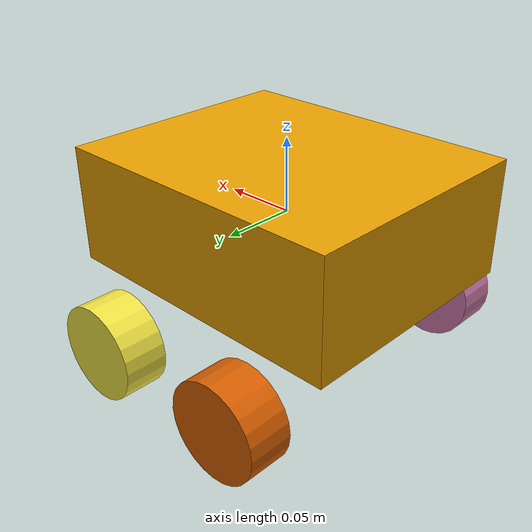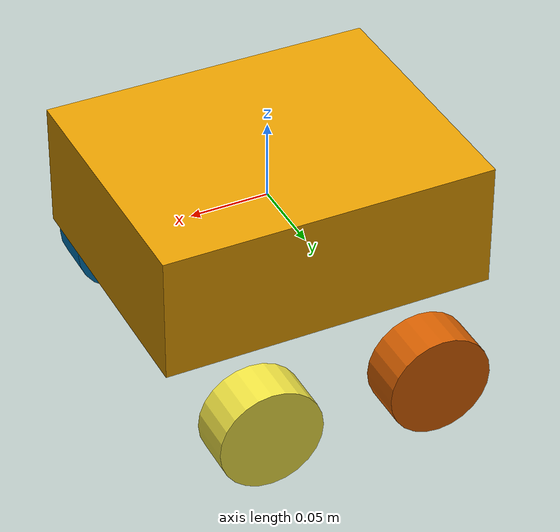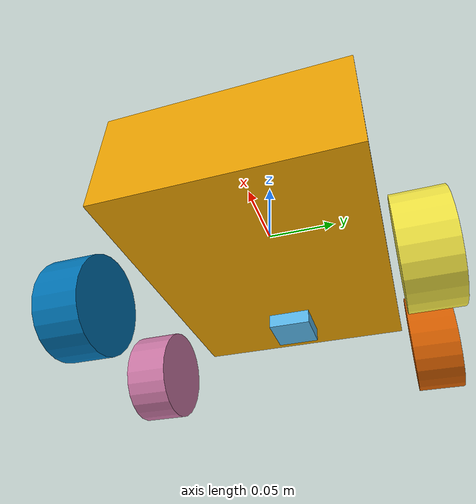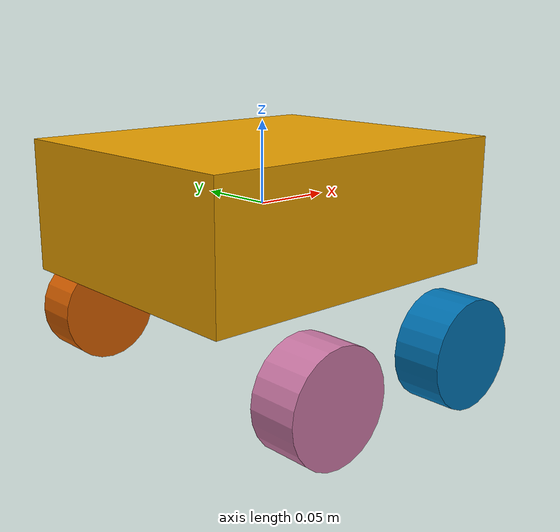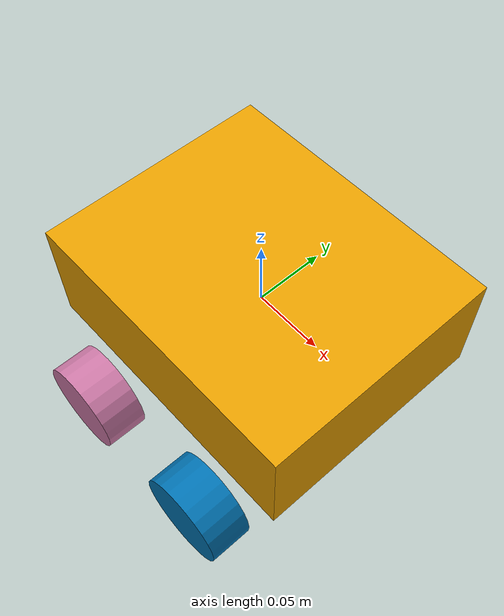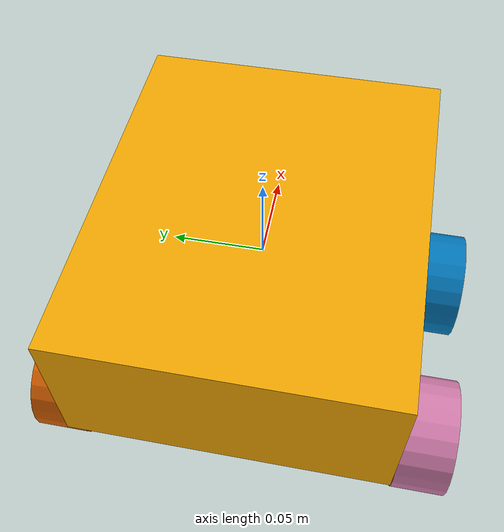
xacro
<?xml version="1.0"?>
<robot xmlns:xacro="http://www.ros.org/wiki/xacro" name="robot">

    <!-- Mesh path prefix -->
    <xacro:property name="mesh_prefix" value="package://robot_description/meshes" />

    <!-- Wheel properties -->
    <xacro:property name="wheel_radius" value="0.033" />
    <xacro:property name="wheel_width" value="0.03" />
    <xacro:property name="wheel_x_offset" value="0.055" />
    <xacro:property name="wheel_y_offset" value="0.105" />
    <xacro:property name="wheel_z_offset" value="-0.0784" />

    <!-- ===================== LINKS ===================== -->

    <!-- BASE FOOTPRINT -->
    <!-- 2D ground-plane projection used by nav2 and SLAM for costmap/odometry -->

    <!-- BASE LINK -->
    <link name="base_link">
        <visual>
            <origin xyz="0 0 0" rpy="0 0 0" />
            <geometry>
                <mesh filename="${mesh_prefix}/robot.obj" />
            </geometry>
        </visual>
    </link>

    <!-- IMU LINK -->
    <link name="imu_link">
        <visual>
            <origin xyz="0 0 0" rpy="0 0 0" />
            <geometry>
                <box size="0.03 0.03 0.01" />
            </geometry>
        </visual>
    </link>

    <!-- RPLIDAR LINK -->
    <link name="lidar_link">
        <visual>
            <origin xyz="0 0 0" rpy="0 0 0" />
            <geometry>
                <cylinder radius="0.035" length="0.02368" />
            </geometry>
        </visual>
    </link>

    <!-- OMNI WHEEL LINKS -->
    <link name="wheel_front_left">
        <visual>
            <origin xyz="0 0 0" rpy="${pi/2} 0 0" />
            <geometry>
                <cylinder radius="${wheel_radius}" length="${wheel_width}" />
            </geometry>
        </visual>
    </link>

    <link name="wheel_front_right">
        <visual>
            <origin xyz="0 0 0" rpy="${pi/2} 0 0" />
            <geometry>
                <cylinder radius="${wheel_radius}" length="${wheel_width}" />
            </geometry>
        </visual>
    </link>

    <link name="wheel_rear_left">
        <visual>
            <origin xyz="0 0 0" rpy="${pi/2} 0 0" />
            <geometry>
                <cylinder radius="${wheel_radius}" length="${wheel_width}" />
            </geometry>
        </visual>
    </link>

    <link name="wheel_rear_right">
        <visual>
            <origin xyz="0 0 0" rpy="${pi/2} 0 0" />
            <geometry>
                <cylinder radius="${wheel_radius}" length="${wheel_width}" />
            </geometry>
        </visual>
    </link>

    <!-- ===================== JOINTS ===================== -->

    <!-- BASE_LINK JOINT-->

    <!-- IMU JOINT -->
    <joint name="base_link_to_imu" type="fixed">
        <parent link="base_link" />
        <child link="imu_link" />
        <origin xyz="-0.044 0.006 -0.0575" rpy="0 0 0" />
    </joint>

    <!-- RPLIDAR JOINT -->
    <joint name="base_link_to_lidar" type="fixed">
        <parent link="base_link" />
        <child link="lidar_link" />
        <origin xyz="0.0 0.0 0.0" rpy="0 0 0" />
    </joint>

    <!-- WHEEL JOINTS (continuous for driven wheels) -->
    <joint name="base_link_to_wheel_front_left" type="continuous">
        <parent link="base_link" />
        <child link="wheel_front_left" />
        <origin xyz="${wheel_x_offset} ${wheel_y_offset} ${wheel_z_offset}" rpy="0 0 0" />
        <axis xyz="0 1 0" />
    </joint>

    <joint name="base_link_to_wheel_front_right" type="continuous">
        <parent link="base_link" />
        <child link="wheel_front_right" />
        <origin xyz="${wheel_x_offset} ${-wheel_y_offset} ${wheel_z_offset}" rpy="0 0 0" />
        <axis xyz="0 1 0" />
    </joint>

    <joint name="base_link_to_wheel_rear_left" type="continuous">
        <parent link="base_link" />
        <child link="wheel_rear_left" />
        <origin xyz="${-wheel_x_offset} ${wheel_y_offset} ${wheel_z_offset}" rpy="0 0 0" />
        <axis xyz="0 1 0" />
    </joint>

    <joint name="base_link_to_wheel_rear_right" type="continuous">
        <parent link="base_link" />
        <child link="wheel_rear_right" />
        <origin xyz="${-wheel_x_offset} ${-wheel_y_offset} ${wheel_z_offset}" rpy="0 0 0" />
        <axis xyz="0 1 0" />
    </joint>

</robot>
